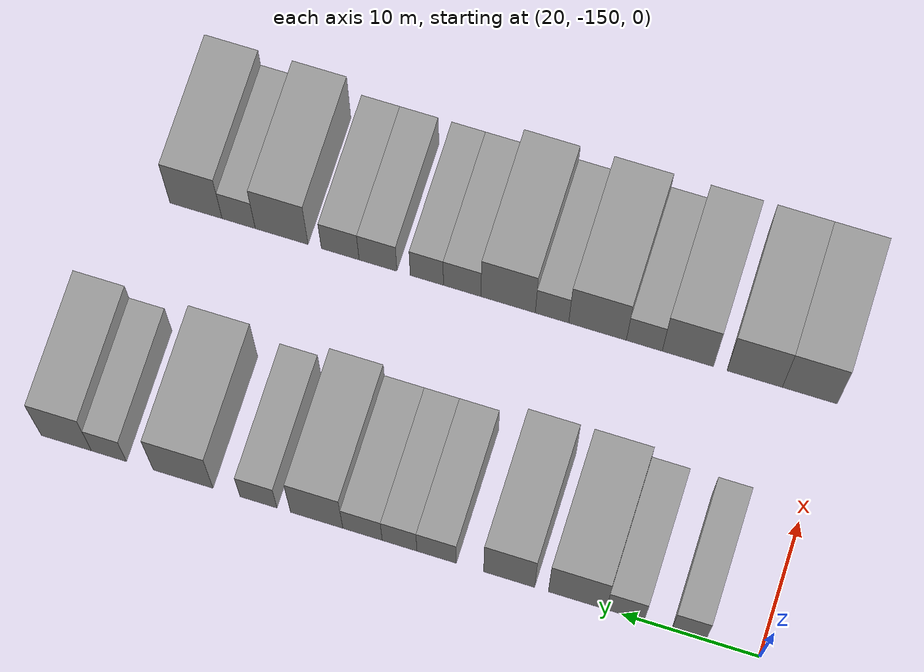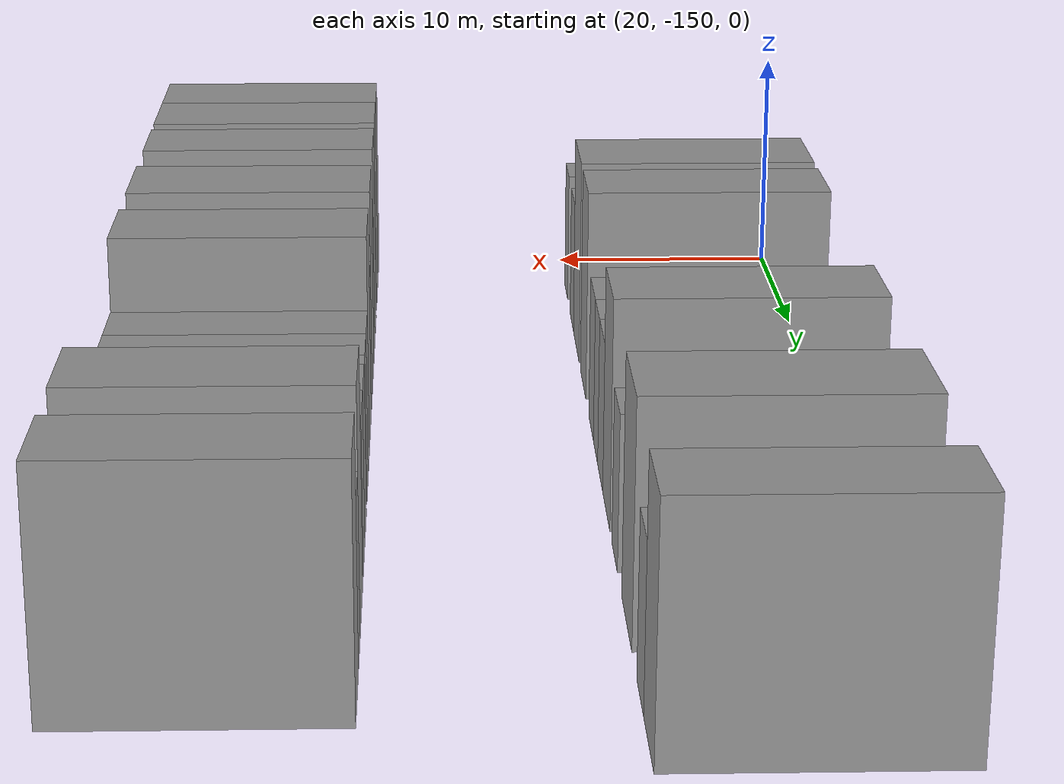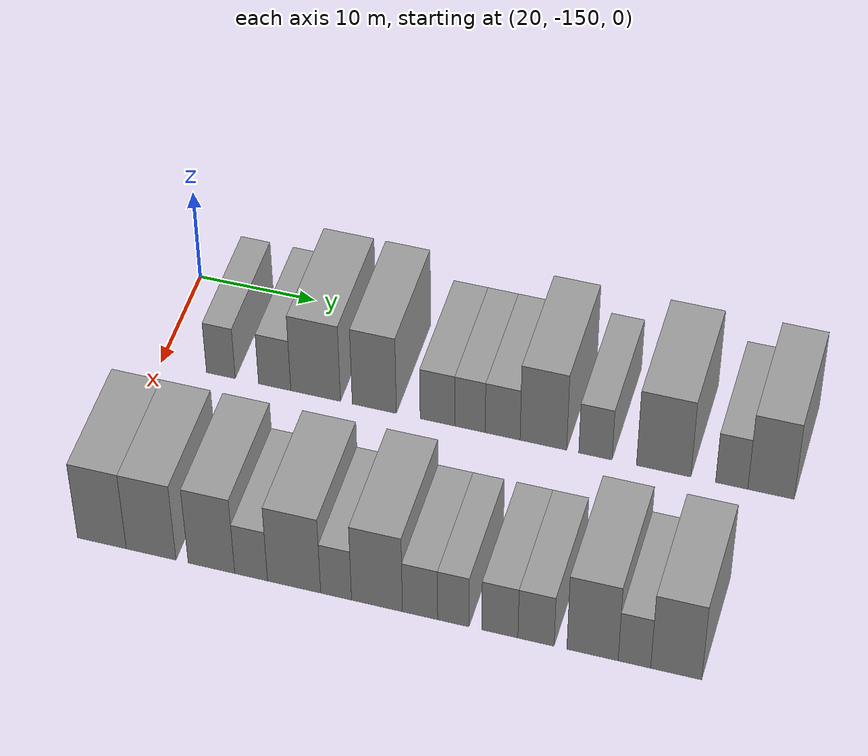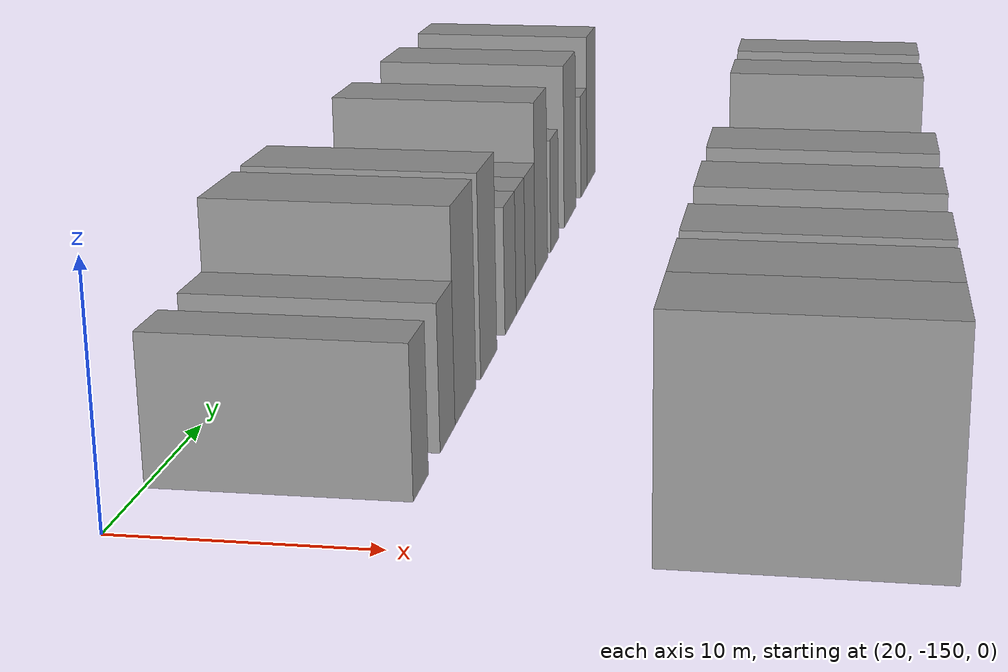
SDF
<sdf version="1.6">
 <world name="default">
  <model name="building_13">
   <static>1</static>
   <pose>25.0000 -144.8468 0 0.000000 0.000000 0.000000</pose>
   <link name="link">
    <pose>0 0 3.00 0 0 0</pose>
    <collision name="collision"><geometry><box><size>10.0000 2.4714 6.0000</size></box></geometry></collision>
    <visual name="visual">
     <cast_shadows>0</cast_shadows>
     <geometry><box><size>10.0000 2.4714 6.0000</size></box></geometry>
     <material>
      <script>
       <uri>model://grey_wall/materials/scripts</uri>
       <uri>model://grey_wall/materials/textures</uri>
       <name>vrc/grey_wall</name>
      </script>
     </material>
    </visual>
   </link>
  </model>
  <model name="building_14">
   <static>1</static>
   <pose>25.0000 -140.2355 0 0.000000 0.000000 0.000000</pose>
   <link name="link">
    <pose>0 0 3.00 0 0 0</pose>
    <collision name="collision"><geometry><box><size>10.0000 2.7512 6.0000</size></box></geometry></collision>
    <visual name="visual">
     <cast_shadows>0</cast_shadows>
     <geometry><box><size>10.0000 2.7512 6.0000</size></box></geometry>
     <material>
      <script>
       <uri>model://grey_wall/materials/scripts</uri>
       <uri>model://grey_wall/materials/textures</uri>
       <name>vrc/grey_wall</name>
      </script>
     </material>
    </visual>
   </link>
  </model>
  <model name="building_15">
   <static>1</static>
   <pose>25.0000 -136.7454 0 0.000000 0.000000 0.000000</pose>
   <link name="link">
    <pose>0 0 4.50 0 0 0</pose>
    <collision name="collision"><geometry><box><size>10.0000 4.2292 9.0000</size></box></geometry></collision>
    <visual name="visual">
     <cast_shadows>0</cast_shadows>
     <geometry><box><size>10.0000 4.2292 9.0000</size></box></geometry>
     <material>
      <script>
       <uri>model://grey_wall/materials/scripts</uri>
       <uri>model://grey_wall/materials/textures</uri>
       <name>vrc/grey_wall</name>
      </script>
     </material>
    </visual>
   </link>
  </model>
  <model name="building_16">
   <static>1</static>
   <pose>25.0000 -131.7684 0 0.000000 0.000000 0.000000</pose>
   <link name="link">
    <pose>0 0 4.50 0 0 0</pose>
    <collision name="collision"><geometry><box><size>10.0000 3.7248 9.0000</size></box></geometry></collision>
    <visual name="visual">
     <cast_shadows>0</cast_shadows>
     <geometry><box><size>10.0000 3.7248 9.0000</size></box></geometry>
     <material>
      <script>
       <uri>model://grey_wall/materials/scripts</uri>
       <uri>model://grey_wall/materials/textures</uri>
       <name>vrc/grey_wall</name>
      </script>
     </material>
    </visual>
   </link>
  </model>
  <model name="building_17">
   <static>1</static>
   <pose>25.0000 -126.4617 0 0.000000 0.000000 0.000000</pose>
   <link name="link">
    <pose>0 0 3.00 0 0 0</pose>
    <collision name="collision"><geometry><box><size>10.0000 2.8886 6.0000</size></box></geometry></collision>
    <visual name="visual">
     <cast_shadows>0</cast_shadows>
     <geometry><box><size>10.0000 2.8886 6.0000</size></box></geometry>
     <material>
      <script>
       <uri>model://grey_wall/materials/scripts</uri>
       <uri>model://grey_wall/materials/textures</uri>
       <name>vrc/grey_wall</name>
      </script>
     </material>
    </visual>
   </link>
  </model>
  <model name="building_18">
   <static>1</static>
   <pose>25.0000 -123.7421 0 0.000000 0.000000 0.000000</pose>
   <link name="link">
    <pose>0 0 3.00 0 0 0</pose>
    <collision name="collision"><geometry><box><size>10.0000 2.5507 6.0000</size></box></geometry></collision>
    <visual name="visual">
     <cast_shadows>0</cast_shadows>
     <geometry><box><size>10.0000 2.5507 6.0000</size></box></geometry>
     <material>
      <script>
       <uri>model://grey_wall/materials/scripts</uri>
       <uri>model://grey_wall/materials/textures</uri>
       <name>vrc/grey_wall</name>
      </script>
     </material>
    </visual>
   </link>
  </model>
  <model name="building_19">
   <static>1</static>
   <pose>25.0000 -121.0176 0 0.000000 0.000000 0.000000</pose>
   <link name="link">
    <pose>0 0 3.00 0 0 0</pose>
    <collision name="collision"><geometry><box><size>10.0000 2.8985 6.0000</size></box></geometry></collision>
    <visual name="visual">
     <cast_shadows>0</cast_shadows>
     <geometry><box><size>10.0000 2.8985 6.0000</size></box></geometry>
     <material>
      <script>
       <uri>model://grey_wall/materials/scripts</uri>
       <uri>model://grey_wall/materials/textures</uri>
       <name>vrc/grey_wall</name>
      </script>
     </material>
    </visual>
   </link>
  </model>
  <model name="building_20">
   <static>1</static>
   <pose>25.0000 -117.6397 0 0.000000 0.000000 0.000000</pose>
   <link name="link">
    <pose>0 0 4.50 0 0 0</pose>
    <collision name="collision"><geometry><box><size>10.0000 3.8573 9.0000</size></box></geometry></collision>
    <visual name="visual">
     <cast_shadows>0</cast_shadows>
     <geometry><box><size>10.0000 3.8573 9.0000</size></box></geometry>
     <material>
      <script>
       <uri>model://grey_wall/materials/scripts</uri>
       <uri>model://grey_wall/materials/textures</uri>
       <name>vrc/grey_wall</name>
      </script>
     </material>
    </visual>
   </link>
  </model>
  <model name="building_21">
   <static>1</static>
   <pose>25.0000 -113.3407 0 0.000000 0.000000 0.000000</pose>
   <link name="link">
    <pose>0 0 3.00 0 0 0</pose>
    <collision name="collision"><geometry><box><size>10.0000 2.7407 6.0000</size></box></geometry></collision>
    <visual name="visual">
     <cast_shadows>0</cast_shadows>
     <geometry><box><size>10.0000 2.7407 6.0000</size></box></geometry>
     <material>
      <script>
       <uri>model://grey_wall/materials/scripts</uri>
       <uri>model://grey_wall/materials/textures</uri>
       <name>vrc/grey_wall</name>
      </script>
     </material>
    </visual>
   </link>
  </model>
  <model name="building_22">
   <static>1</static>
   <pose>25.0000 -107.7501 0 0.000000 0.000000 0.000000</pose>
   <link name="link">
    <pose>0 0 4.50 0 0 0</pose>
    <collision name="collision"><geometry><box><size>10.0000 4.4406 9.0000</size></box></geometry></collision>
    <visual name="visual">
     <cast_shadows>0</cast_shadows>
     <geometry><box><size>10.0000 4.4406 9.0000</size></box></geometry>
     <material>
      <script>
       <uri>model://grey_wall/materials/scripts</uri>
       <uri>model://grey_wall/materials/textures</uri>
       <name>vrc/grey_wall</name>
      </script>
     </material>
    </visual>
   </link>
  </model>
  <model name="building_23">
   <static>1</static>
   <pose>25.0000 -102.2286 0 0.000000 0.000000 0.000000</pose>
   <link name="link">
    <pose>0 0 3.00 0 0 0</pose>
    <collision name="collision"><geometry><box><size>10.0000 2.6023 6.0000</size></box></geometry></collision>
    <visual name="visual">
     <cast_shadows>0</cast_shadows>
     <geometry><box><size>10.0000 2.6023 6.0000</size></box></geometry>
     <material>
      <script>
       <uri>model://grey_wall/materials/scripts</uri>
       <uri>model://grey_wall/materials/textures</uri>
       <name>vrc/grey_wall</name>
      </script>
     </material>
    </visual>
   </link>
  </model>
  <model name="building_24">
   <static>1</static>
   <pose>25.0000 -99.0529 0 0.000000 0.000000 0.000000</pose>
   <link name="link">
    <pose>0 0 4.50 0 0 0</pose>
    <collision name="collision"><geometry><box><size>10.0000 3.7491 9.0000</size></box></geometry></collision>
    <visual name="visual">
     <cast_shadows>0</cast_shadows>
     <geometry><box><size>10.0000 3.7491 9.0000</size></box></geometry>
     <material>
      <script>
       <uri>model://grey_wall/materials/scripts</uri>
       <uri>model://grey_wall/materials/textures</uri>
       <name>vrc/grey_wall</name>
      </script>
     </material>
    </visual>
   </link>
  </model>
  <model name="building_119">
   <static>1</static>
   <pose>44.0000 -148.2184 0 0.000000 0.000000 0.000000</pose>
   <link name="link">
    <pose>0 0 4.50 0 0 0</pose>
    <collision name="collision"><geometry><box><size>10.0000 4.0315 9.0000</size></box></geometry></collision>
    <visual name="visual">
     <cast_shadows>0</cast_shadows>
     <geometry><box><size>10.0000 4.0315 9.0000</size></box></geometry>
     <material>
      <script>
       <uri>model://grey_wall/materials/scripts</uri>
       <uri>model://grey_wall/materials/textures</uri>
       <name>vrc/grey_wall</name>
      </script>
     </material>
    </visual>
   </link>
  </model>
  <model name="building_120">
   <static>1</static>
   <pose>44.0000 -144.1579 0 0.000000 0.000000 0.000000</pose>
   <link name="link">
    <pose>0 0 4.50 0 0 0</pose>
    <collision name="collision"><geometry><box><size>10.0000 4.0895 9.0000</size></box></geometry></collision>
    <visual name="visual">
     <cast_shadows>0</cast_shadows>
     <geometry><box><size>10.0000 4.0895 9.0000</size></box></geometry>
     <material>
      <script>
       <uri>model://grey_wall/materials/scripts</uri>
       <uri>model://grey_wall/materials/textures</uri>
       <name>vrc/grey_wall</name>
      </script>
     </material>
    </visual>
   </link>
  </model>
  <model name="building_121">
   <static>1</static>
   <pose>44.0000 -139.2148 0 0.000000 0.000000 0.000000</pose>
   <link name="link">
    <pose>0 0 4.50 0 0 0</pose>
    <collision name="collision"><geometry><box><size>10.0000 3.7968 9.0000</size></box></geometry></collision>
    <visual name="visual">
     <cast_shadows>0</cast_shadows>
     <geometry><box><size>10.0000 3.7968 9.0000</size></box></geometry>
     <material>
      <script>
       <uri>model://grey_wall/materials/scripts</uri>
       <uri>model://grey_wall/materials/textures</uri>
       <name>vrc/grey_wall</name>
      </script>
     </material>
    </visual>
   </link>
  </model>
  <model name="building_122">
   <static>1</static>
   <pose>44.0000 -135.9818 0 0.000000 0.000000 0.000000</pose>
   <link name="link">
    <pose>0 0 3.00 0 0 0</pose>
    <collision name="collision"><geometry><box><size>10.0000 2.6690 6.0000</size></box></geometry></collision>
    <visual name="visual">
     <cast_shadows>0</cast_shadows>
     <geometry><box><size>10.0000 2.6690 6.0000</size></box></geometry>
     <material>
      <script>
       <uri>model://grey_wall/materials/scripts</uri>
       <uri>model://grey_wall/materials/textures</uri>
       <name>vrc/grey_wall</name>
      </script>
     </material>
    </visual>
   </link>
  </model>
  <model name="building_123">
   <static>1</static>
   <pose>44.0000 -132.4999 0 0.000000 0.000000 0.000000</pose>
   <link name="link">
    <pose>0 0 4.50 0 0 0</pose>
    <collision name="collision"><geometry><box><size>10.0000 4.2948 9.0000</size></box></geometry></collision>
    <visual name="visual">
     <cast_shadows>0</cast_shadows>
     <geometry><box><size>10.0000 4.2948 9.0000</size></box></geometry>
     <material>
      <script>
       <uri>model://grey_wall/materials/scripts</uri>
       <uri>model://grey_wall/materials/textures</uri>
       <name>vrc/grey_wall</name>
      </script>
     </material>
    </visual>
   </link>
  </model>
  <model name="building_124">
   <static>1</static>
   <pose>44.0000 -129.1109 0 0.000000 0.000000 0.000000</pose>
   <link name="link">
    <pose>0 0 3.00 0 0 0</pose>
    <collision name="collision"><geometry><box><size>10.0000 2.4833 6.0000</size></box></geometry></collision>
    <visual name="visual">
     <cast_shadows>0</cast_shadows>
     <geometry><box><size>10.0000 2.4833 6.0000</size></box></geometry>
     <material>
      <script>
       <uri>model://grey_wall/materials/scripts</uri>
       <uri>model://grey_wall/materials/textures</uri>
       <name>vrc/grey_wall</name>
      </script>
     </material>
    </visual>
   </link>
  </model>
  <model name="building_125">
   <static>1</static>
   <pose>44.0000 -125.8306 0 0.000000 0.000000 0.000000</pose>
   <link name="link">
    <pose>0 0 4.50 0 0 0</pose>
    <collision name="collision"><geometry><box><size>10.0000 4.0773 9.0000</size></box></geometry></collision>
    <visual name="visual">
     <cast_shadows>0</cast_shadows>
     <geometry><box><size>10.0000 4.0773 9.0000</size></box></geometry>
     <material>
      <script>
       <uri>model://grey_wall/materials/scripts</uri>
       <uri>model://grey_wall/materials/textures</uri>
       <name>vrc/grey_wall</name>
      </script>
     </material>
    </visual>
   </link>
  </model>
  <model name="building_126">
   <static>1</static>
   <pose>44.0000 -122.3905 0 0.000000 0.000000 0.000000</pose>
   <link name="link">
    <pose>0 0 3.00 0 0 0</pose>
    <collision name="collision"><geometry><box><size>10.0000 2.8029 6.0000</size></box></geometry></collision>
    <visual name="visual">
     <cast_shadows>0</cast_shadows>
     <geometry><box><size>10.0000 2.8029 6.0000</size></box></geometry>
     <material>
      <script>
       <uri>model://grey_wall/materials/scripts</uri>
       <uri>model://grey_wall/materials/textures</uri>
       <name>vrc/grey_wall</name>
      </script>
     </material>
    </visual>
   </link>
  </model>
  <model name="building_127">
   <static>1</static>
   <pose>44.0000 -119.7441 0 0.000000 0.000000 0.000000</pose>
   <link name="link">
    <pose>0 0 3.00 0 0 0</pose>
    <collision name="collision"><geometry><box><size>10.0000 2.4900 6.0000</size></box></geometry></collision>
    <visual name="visual">
     <cast_shadows>0</cast_shadows>
     <geometry><box><size>10.0000 2.4900 6.0000</size></box></geometry>
     <material>
      <script>
       <uri>model://grey_wall/materials/scripts</uri>
       <uri>model://grey_wall/materials/textures</uri>
       <name>vrc/grey_wall</name>
      </script>
     </material>
    </visual>
   </link>
  </model>
  <model name="building_128">
   <static>1</static>
   <pose>44.0000 -116.0726 0 0.000000 0.000000 0.000000</pose>
   <link name="link">
    <pose>0 0 3.00 0 0 0</pose>
    <collision name="collision"><geometry><box><size>10.0000 2.8530 6.0000</size></box></geometry></collision>
    <visual name="visual">
     <cast_shadows>0</cast_shadows>
     <geometry><box><size>10.0000 2.8530 6.0000</size></box></geometry>
     <material>
      <script>
       <uri>model://grey_wall/materials/scripts</uri>
       <uri>model://grey_wall/materials/textures</uri>
       <name>vrc/grey_wall</name>
      </script>
     </material>
    </visual>
   </link>
  </model>
  <model name="building_129">
   <static>1</static>
   <pose>44.0000 -113.2252 0 0.000000 0.000000 0.000000</pose>
   <link name="link">
    <pose>0 0 3.00 0 0 0</pose>
    <collision name="collision"><geometry><box><size>10.0000 2.8418 6.0000</size></box></geometry></collision>
    <visual name="visual">
     <cast_shadows>0</cast_shadows>
     <geometry><box><size>10.0000 2.8418 6.0000</size></box></geometry>
     <material>
      <script>
       <uri>model://grey_wall/materials/scripts</uri>
       <uri>model://grey_wall/materials/textures</uri>
       <name>vrc/grey_wall</name>
      </script>
     </material>
    </visual>
   </link>
  </model>
  <model name="building_130">
   <static>1</static>
   <pose>44.0000 -108.8053 0 0.000000 0.000000 0.000000</pose>
   <link name="link">
    <pose>0 0 4.50 0 0 0</pose>
    <collision name="collision"><geometry><box><size>10.0000 3.9981 9.0000</size></box></geometry></collision>
    <visual name="visual">
     <cast_shadows>0</cast_shadows>
     <geometry><box><size>10.0000 3.9981 9.0000</size></box></geometry>
     <material>
      <script>
       <uri>model://grey_wall/materials/scripts</uri>
       <uri>model://grey_wall/materials/textures</uri>
       <name>vrc/grey_wall</name>
      </script>
     </material>
    </visual>
   </link>
  </model>
  <model name="building_131">
   <static>1</static>
   <pose>44.0000 -105.5471 0 0.000000 0.000000 0.000000</pose>
   <link name="link">
    <pose>0 0 3.00 0 0 0</pose>
    <collision name="collision"><geometry><box><size>10.0000 2.5182 6.0000</size></box></geometry></collision>
    <visual name="visual">
     <cast_shadows>0</cast_shadows>
     <geometry><box><size>10.0000 2.5182 6.0000</size></box></geometry>
     <material>
      <script>
       <uri>model://grey_wall/materials/scripts</uri>
       <uri>model://grey_wall/materials/textures</uri>
       <name>vrc/grey_wall</name>
      </script>
     </material>
    </visual>
   </link>
  </model>
  <model name="building_132">
   <static>1</static>
   <pose>44.0000 -102.3120 0 0.000000 0.000000 0.000000</pose>
   <link name="link">
    <pose>0 0 4.50 0 0 0</pose>
    <collision name="collision"><geometry><box><size>10.0000 3.9521 9.0000</size></box></geometry></collision>
    <visual name="visual">
     <cast_shadows>0</cast_shadows>
     <geometry><box><size>10.0000 3.9521 9.0000</size></box></geometry>
     <material>
      <script>
       <uri>model://grey_wall/materials/scripts</uri>
       <uri>model://grey_wall/materials/textures</uri>
       <name>vrc/grey_wall</name>
      </script>
     </material>
    </visual>
   </link>
  </model>
 </world>
</sdf>
